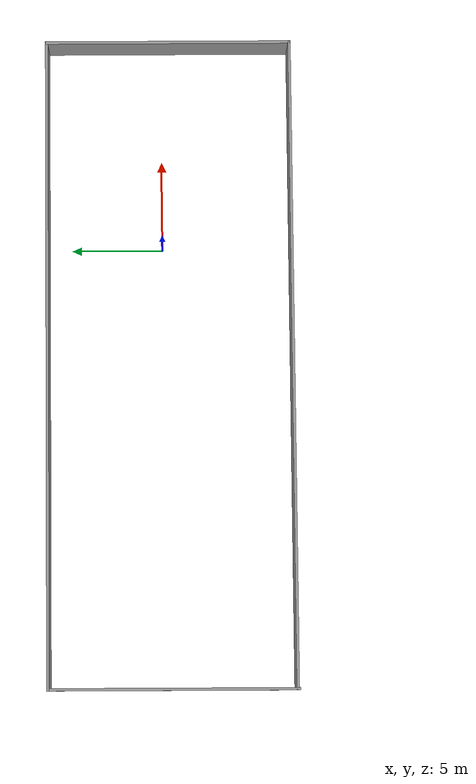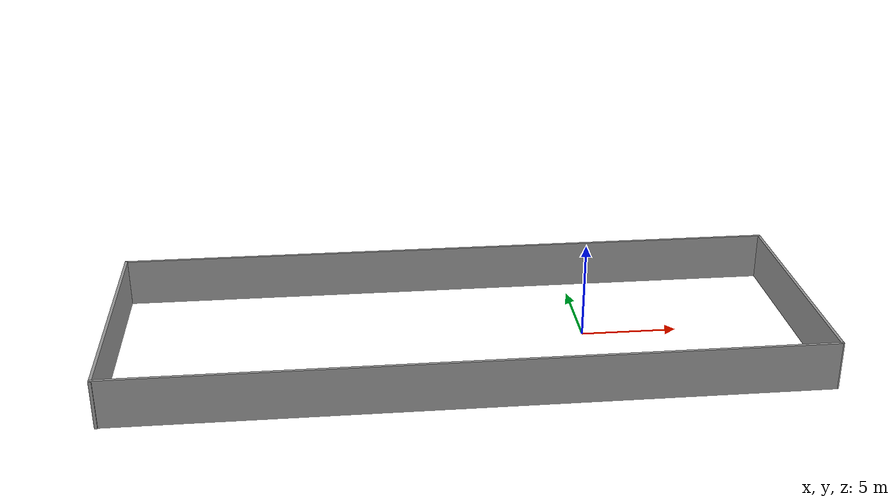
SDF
<?xml version='1.0'?>
<sdf version='1.7'>
  <model name='walls'>
    <pose>-6.46491 -0.414902 0 0 -0 0</pose>
    <link name='Wall_4'>
      <collision name='Wall_4_Collision'>
        <geometry>
          <box>
            <size>13.5701 0.15 2.5</size>
          </box>
        </geometry>
        <pose>0 0 1.25 0 -0 0</pose>
      </collision>
      <visual name='Wall_4_Visual'>
        <pose>0 0 1.25 0 -0 0</pose>
        <geometry>
          <box>
            <size>13.5701 0.15 2.5</size>
          </box>
        </geometry>
        <material>
          <script>
            <uri>file://media/materials/scripts/gazebo.material</uri>
            <name>Gazebo/Grey</name>
          </script>
          <ambient>1 1 1 1</ambient>
        </material>
        <meta>
          <layer>0</layer>
        </meta>
      </visual>
      <pose>-17.76 -0.039985 0 0 -0 -1.57378</pose>
    </link>
    <link name='Wall_5'>
      <collision name='Wall_5_Collision'>
        <geometry>
          <box>
            <size>35.65 0.15 2.5</size>
          </box>
        </geometry>
        <pose>0 0 1.25 0 -0 0</pose>
      </collision>
      <visual name='Wall_5_Visual'>
        <pose>0 0 1.25 0 -0 0</pose>
        <geometry>
          <box>
            <size>35.65 0.15 2.5</size>
          </box>
        </geometry>
        <material>
          <script>
            <uri>file://media/materials/scripts/gazebo.material</uri>
            <name>Gazebo/Grey</name>
          </script>
          <ambient>1 1 1 1</ambient>
        </material>
        <meta>
          <layer>0</layer>
        </meta>
      </visual>
      <pose>-0.030001 -6.67999 0 0 -0 0.000563</pose>
    </link>
    <link name='Wall_6'>
      <collision name='Wall_6_Collision'>
        <geometry>
          <box>
            <size>13.57 0.15 2.5</size>
          </box>
        </geometry>
        <pose>0 0 1.25 0 -0 0</pose>
      </collision>
      <visual name='Wall_6_Visual'>
        <pose>0 0 1.25 0 -0 0</pose>
        <geometry>
          <box>
            <size>13.57 0.15 2.5</size>
          </box>
        </geometry>
        <material>
          <script>
            <uri>file://media/materials/scripts/gazebo.material</uri>
            <name>Gazebo/Grey</name>
          </script>
          <ambient>1 1 1 1</ambient>
        </material>
        <meta>
          <layer>0</layer>
        </meta>
      </visual>
      <pose>17.76 0.040015 0 0 -0 1.56782</pose>
    </link>
    <link name='Wall_7'>
      <collision name='Wall_7_Collision'>
        <geometry>
          <box>
            <size>35.67 0.15 2.5</size>
          </box>
        </geometry>
        <pose>0 0 1.25 0 -0 0</pose>
      </collision>
      <visual name='Wall_7_Visual'>
        <pose>0 0 1.25 0 -0 0</pose>
        <geometry>
          <box>
            <size>35.67 0.15 2.5</size>
          </box>
        </geometry>
        <material>
          <script>
            <uri>file://media/materials/scripts/gazebo.material</uri>
            <name>Gazebo/Grey</name>
          </script>
          <ambient>1 1 1 1</ambient>
        </material>
        <meta>
          <layer>0</layer>
        </meta>
      </visual>
      <pose>0.02 6.74001 0 0 -0 -3.14103</pose>
    </link>
    <static>1</static>
  </model>
</sdf>
